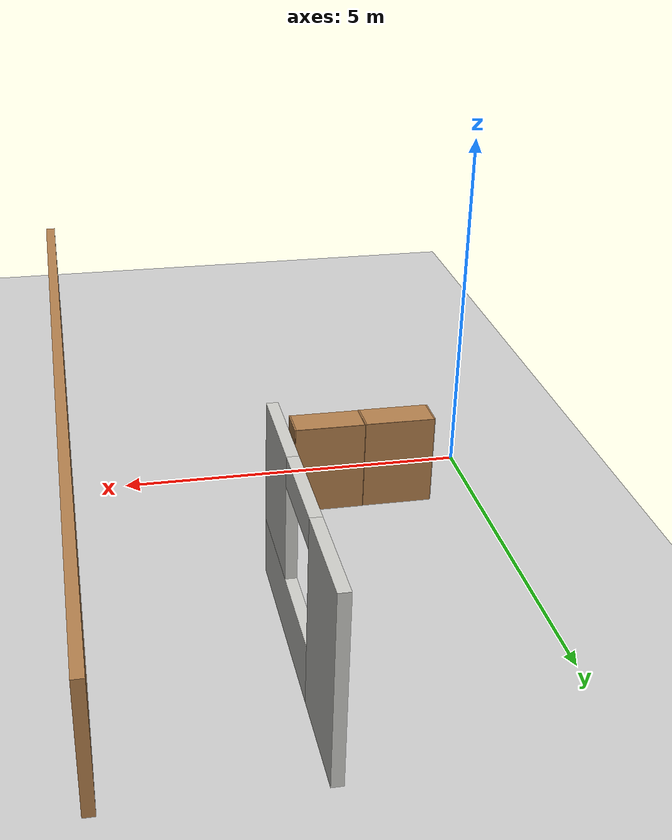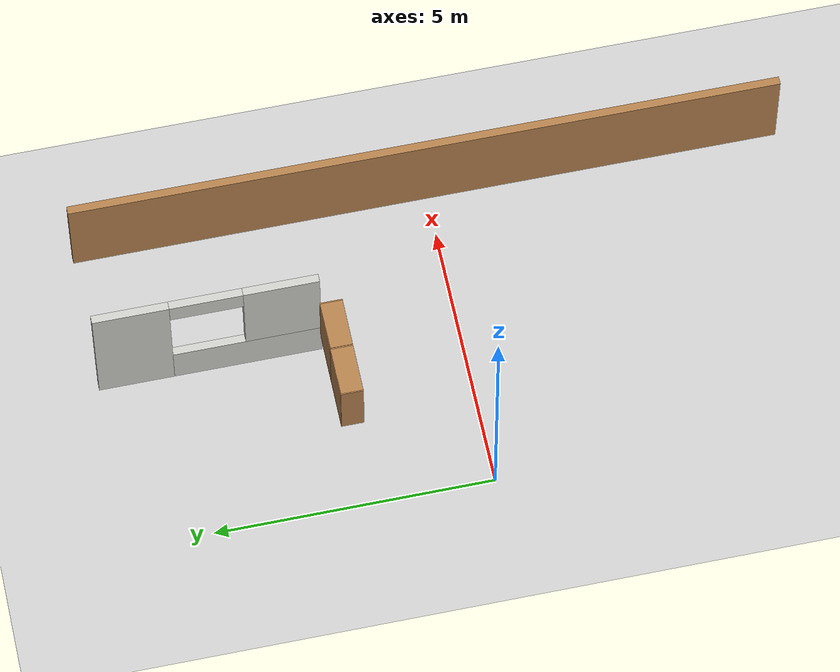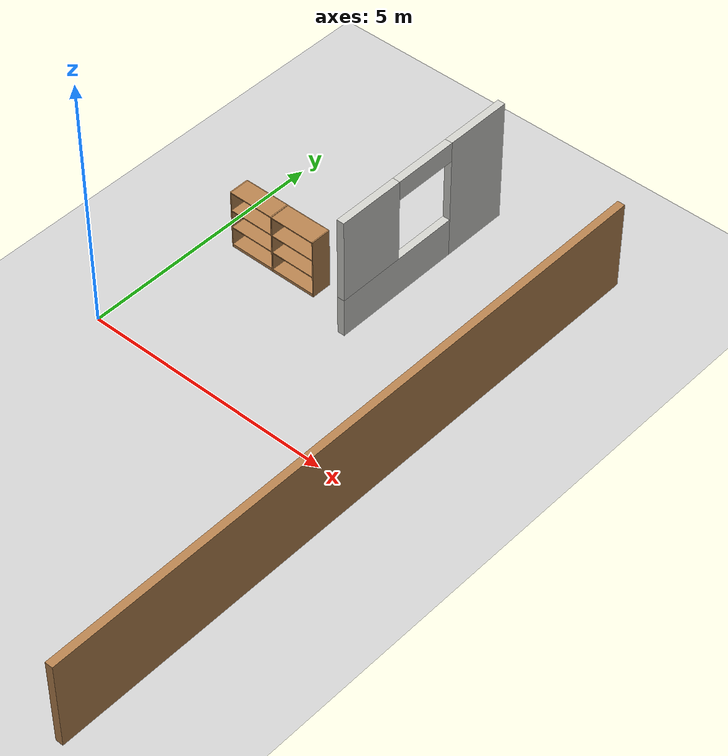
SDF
<sdf version="1.6">
 <world name="default">
  <model name="ground_plane">
   <static>1</static>
   <link name="link">
    <collision name="collision">
     <geometry><plane><normal>0 0 1</normal><size>100 100</size></plane></geometry>
     <surface>
      <contact><collide_bitmask>65535</collide_bitmask></contact>
      <friction><ode><mu>100</mu><mu2>50</mu2></ode></friction>
     </surface>
    </collision>
    <visual name="visual">
     <cast_shadows>0</cast_shadows>
     <geometry><plane><normal>0 0 1</normal><size>100 100</size></plane></geometry>
     <material>
      <script><uri>file://media/materials/scripts/gazebo.material</uri><name>Gazebo/Grey</name></script>
     </material>
    </visual>
   </link>
  </model>
  <model name="house">
   <link name="Wall_17">
    <pose>3.12504 4.42806 0 0 0 -1.5708</pose>
    <visual name="Wall_17_Visual_0">
     <pose>-1.32407 0 1.25 0 -0 0</pose>
     <geometry><box><size>1.35186 0.15 2.5</size></box></geometry>
     <material>
      <script><uri>file://media/materials/scripts/gazebo.material</uri><name>Gazebo/CeilingTiled</name></script>
      <ambient>1 1 1 1</ambient>
      <shader type="pixel"/>
     </material>
     <meta><layer>0</layer></meta>
    </visual>
    <visual name="Wall_17_Visual_3">
     <pose>0.001858 0 2.3 0 -0 0</pose>
     <geometry><box><size>1.3 0.15 0.4</size></box></geometry>
     <material>
      <script><uri>file://media/materials/scripts/gazebo.material</uri><name>Gazebo/CeilingTiled</name></script>
      <ambient>1 1 1 1</ambient>
      <shader type="pixel"/>
     </material>
     <meta><layer>0</layer></meta>
    </visual>
    <visual name="Wall_17_Visual_2">
     <pose>1.32593 0 1.65 0 -0 0</pose>
     <geometry><box><size>1.34814 0.15 1.7</size></box></geometry>
     <material>
      <script><uri>file://media/materials/scripts/gazebo.material</uri><name>Gazebo/CeilingTiled</name></script>
      <ambient>1 1 1 1</ambient>
      <shader type="pixel"/>
     </material>
     <meta><layer>0</layer></meta>
    </visual>
    <visual name="Wall_17_Visual_1">
     <pose>0.675929 0 0.4 0 -0 0</pose>
     <geometry><box><size>2.64814 0.15 0.8</size></box></geometry>
     <material>
      <script><uri>file://media/materials/scripts/gazebo.material</uri><name>Gazebo/CeilingTiled</name></script>
      <ambient>1 1 1 1</ambient>
      <shader type="pixel"/>
     </material>
     <meta><layer>0</layer></meta>
    </visual>
    <collision name="Wall_17_Collision_0">
     <pose>-1.32407 0 1.25 0 -0 0</pose>
     <geometry><box><size>1.35186 0.15 2.5</size></box></geometry>
     <surface>
      <friction>
       <ode><mu>1</mu><mu2>1</mu2><fdir1>0 0 0</fdir1><slip1>0</slip1><slip2>0</slip2></ode>
       <torsional>
        <coefficient>1</coefficient>
        <patch_radius>0</patch_radius>
        <surface_radius>0</surface_radius>
        <use_patch_radius>1</use_patch_radius>
        <ode><slip>0</slip></ode>
       </torsional>
      </friction>
      <bounce><restitution_coefficient>0</restitution_coefficient><threshold>1e+06</threshold></bounce>
      <contact>
       <collide_without_contact>0</collide_without_contact>
       <collide_without_contact_bitmask>1</collide_without_contact_bitmask>
       <collide_bitmask>1</collide_bitmask>
       <ode>
        <soft_cfm>0</soft_cfm>
        <soft_erp>0.2</soft_erp>
        <kp>1e+13</kp>
        <kd>1</kd>
        <max_vel>0.01</max_vel>
        <min_depth>0</min_depth>
       </ode>
       <bullet>
        <split_impulse>1</split_impulse>
        <split_impulse_penetration_threshold>-0.01</split_impulse_penetration_threshold>
        <soft_cfm>0</soft_cfm>
        <soft_erp>0.2</soft_erp>
        <kp>1e+13</kp>
        <kd>1</kd>
       </bullet>
      </contact>
     </surface>
    </collision>
    <collision name="Wall_17_Collision_3">
     <pose>0.001858 0 2.3 0 -0 0</pose>
     <geometry><box><size>1.3 0.15 0.4</size></box></geometry>
     <surface>
      <friction>
       <ode><mu>1</mu><mu2>1</mu2><fdir1>0 0 0</fdir1><slip1>0</slip1><slip2>0</slip2></ode>
       <torsional>
        <coefficient>1</coefficient>
        <patch_radius>0</patch_radius>
        <surface_radius>0</surface_radius>
        <use_patch_radius>1</use_patch_radius>
        <ode><slip>0</slip></ode>
       </torsional>
      </friction>
      <bounce><restitution_coefficient>0</restitution_coefficient><threshold>1e+06</threshold></bounce>
      <contact>
       <collide_without_contact>0</collide_without_contact>
       <collide_without_contact_bitmask>1</collide_without_contact_bitmask>
       <collide_bitmask>1</collide_bitmask>
       <ode>
        <soft_cfm>0</soft_cfm>
        <soft_erp>0.2</soft_erp>
        <kp>1e+13</kp>
        <kd>1</kd>
        <max_vel>0.01</max_vel>
        <min_depth>0</min_depth>
       </ode>
       <bullet>
        <split_impulse>1</split_impulse>
        <split_impulse_penetration_threshold>-0.01</split_impulse_penetration_threshold>
        <soft_cfm>0</soft_cfm>
        <soft_erp>0.2</soft_erp>
        <kp>1e+13</kp>
        <kd>1</kd>
       </bullet>
      </contact>
     </surface>
    </collision>
    <collision name="Wall_17_Collision_2">
     <pose>1.32593 0 1.65 0 -0 0</pose>
     <geometry><box><size>1.34814 0.15 1.7</size></box></geometry>
     <surface>
      <friction>
       <ode><mu>1</mu><mu2>1</mu2><fdir1>0 0 0</fdir1><slip1>0</slip1><slip2>0</slip2></ode>
       <torsional>
        <coefficient>1</coefficient>
        <patch_radius>0</patch_radius>
        <surface_radius>0</surface_radius>
        <use_patch_radius>1</use_patch_radius>
        <ode><slip>0</slip></ode>
       </torsional>
      </friction>
      <bounce><restitution_coefficient>0</restitution_coefficient><threshold>1e+06</threshold></bounce>
      <contact>
       <collide_without_contact>0</collide_without_contact>
       <collide_without_contact_bitmask>1</collide_without_contact_bitmask>
       <collide_bitmask>1</collide_bitmask>
       <ode>
        <soft_cfm>0</soft_cfm>
        <soft_erp>0.2</soft_erp>
        <kp>1e+13</kp>
        <kd>1</kd>
        <max_vel>0.01</max_vel>
        <min_depth>0</min_depth>
       </ode>
       <bullet>
        <split_impulse>1</split_impulse>
        <split_impulse_penetration_threshold>-0.01</split_impulse_penetration_threshold>
        <soft_cfm>0</soft_cfm>
        <soft_erp>0.2</soft_erp>
        <kp>1e+13</kp>
        <kd>1</kd>
       </bullet>
      </contact>
     </surface>
    </collision>
    <collision name="Wall_17_Collision_1">
     <pose>0.675929 0 0.4 0 -0 0</pose>
     <geometry><box><size>2.64814 0.15 0.8</size></box></geometry>
     <surface>
      <friction>
       <ode><mu>1</mu><mu2>1</mu2><fdir1>0 0 0</fdir1><slip1>0</slip1><slip2>0</slip2></ode>
       <torsional>
        <coefficient>1</coefficient>
        <patch_radius>0</patch_radius>
        <surface_radius>0</surface_radius>
        <use_patch_radius>1</use_patch_radius>
        <ode><slip>0</slip></ode>
       </torsional>
      </friction>
      <bounce><restitution_coefficient>0</restitution_coefficient><threshold>1e+06</threshold></bounce>
      <contact>
       <collide_without_contact>0</collide_without_contact>
       <collide_without_contact_bitmask>1</collide_without_contact_bitmask>
       <collide_bitmask>1</collide_bitmask>
       <ode>
        <soft_cfm>0</soft_cfm>
        <soft_erp>0.2</soft_erp>
        <kp>1e+13</kp>
        <kd>1</kd>
        <max_vel>0.01</max_vel>
        <min_depth>0</min_depth>
       </ode>
       <bullet>
        <split_impulse>1</split_impulse>
        <split_impulse_penetration_threshold>-0.01</split_impulse_penetration_threshold>
        <soft_cfm>0</soft_cfm>
        <soft_erp>0.2</soft_erp>
        <kp>1e+13</kp>
        <kd>1</kd>
       </bullet>
      </contact>
     </surface>
    </collision>
   </link>
   <link name="Wall_26">
    <pose>5.72383 -0.002942 0 0 -0 1.57083</pose>
    <inertial>
     <mass>1</mass>
     <inertia><ixx>1</ixx><ixy>0</ixy><ixz>0</ixz><iyy>1</iyy><iyz>0</iyz><izz>1</izz></inertia>
    </inertial>
    <visual name="Wall_26_Visual">
     <pose>0 0 0.9 0 -0 0</pose>
     <geometry><box><size>12.85 0.15 1.8</size></box></geometry>
     <material>
      <script><uri>file://media/materials/scripts/gazebo.material</uri><name>Gazebo/Wood</name></script>
      <ambient>1 1 1 1</ambient>
      <shader type="pixel"><normal_map>__default__</normal_map></shader>
      <diffuse>0.7 0.7 0.7 1</diffuse>
      <specular>0.01 0.01 0.01 1</specular>
      <emissive>0 0 0 1</emissive>
     </material>
     <meta><layer>0</layer></meta>
    </visual>
    <collision name="Wall_26_Collision">
     <pose>0 0 0.9 0 -0 0</pose>
     <geometry><box><size>12.85 0.15 1.8</size></box></geometry>
     <surface>
      <friction>
       <ode><mu>1</mu><mu2>1</mu2><fdir1>0 0 0</fdir1><slip1>0</slip1><slip2>0</slip2></ode>
       <torsional>
        <coefficient>1</coefficient>
        <patch_radius>0</patch_radius>
        <surface_radius>0</surface_radius>
        <use_patch_radius>1</use_patch_radius>
        <ode><slip>0</slip></ode>
       </torsional>
      </friction>
      <bounce><restitution_coefficient>0</restitution_coefficient><threshold>1e+06</threshold></bounce>
      <contact>
       <collide_without_contact>0</collide_without_contact>
       <collide_without_contact_bitmask>1</collide_without_contact_bitmask>
       <collide_bitmask>1</collide_bitmask>
       <ode>
        <soft_cfm>0</soft_cfm>
        <soft_erp>0.2</soft_erp>
        <kp>1e+13</kp>
        <kd>1</kd>
        <max_vel>0.01</max_vel>
        <min_depth>0</min_depth>
       </ode>
       <bullet>
        <split_impulse>1</split_impulse>
        <split_impulse_penetration_threshold>-0.01</split_impulse_penetration_threshold>
        <soft_cfm>0</soft_cfm>
        <soft_erp>0.2</soft_erp>
        <kp>1e+13</kp>
        <kd>1</kd>
       </bullet>
      </contact>
     </surface>
    </collision>
   </link>
   <static>1</static>
   <pose>0.117199 0.016408 0 0 -0 0</pose>
  </model>
  <model name="bookshelf">
   <static>1</static>
   <link name="link">
    <inertial><mass>1</mass></inertial>
    <collision name="back">
     <pose>0 0.005 0.6 0 -0 0</pose>
     <geometry><box><size>0.9 0.01 1.2</size></box></geometry>
    </collision>
    <visual name="visual1">
     <pose>0 0.005 0.6 0 -0 0</pose>
     <geometry><box><size>0.9 0.01 1.2</size></box></geometry>
     <material>
      <script><uri>file://media/materials/scripts/gazebo.material</uri><name>Gazebo/Wood</name></script>
     </material>
    </visual>
    <collision name="left_side">
     <pose>0.45 -0.195 0.6 0 -0 0</pose>
     <geometry><box><size>0.02 0.4 1.2</size></box></geometry>
    </collision>
    <visual name="visual2">
     <pose>0.45 -0.195 0.6 0 -0 0</pose>
     <geometry><box><size>0.02 0.4 1.2</size></box></geometry>
     <material>
      <script><uri>file://media/materials/scripts/gazebo.material</uri><name>Gazebo/Wood</name></script>
     </material>
    </visual>
    <collision name="right_side">
     <pose>-0.45 -0.195 0.6 0 -0 0</pose>
     <geometry><box><size>0.02 0.4 1.2</size></box></geometry>
    </collision>
    <visual name="visual3">
     <pose>-0.45 -0.195 0.6 0 -0 0</pose>
     <geometry><box><size>0.02 0.4 1.2</size></box></geometry>
     <material>
      <script><uri>file://media/materials/scripts/gazebo.material</uri><name>Gazebo/Wood</name></script>
     </material>
    </visual>
    <collision name="bottom">
     <pose>0 -0.195 0.03 0 -0 0</pose>
     <geometry><box><size>0.88 0.4 0.06</size></box></geometry>
    </collision>
    <visual name="visual4">
     <pose>0 -0.195 0.03 0 -0 0</pose>
     <geometry><box><size>0.88 0.4 0.06</size></box></geometry>
     <material>
      <script><uri>file://media/materials/scripts/gazebo.material</uri><name>Gazebo/Wood</name></script>
     </material>
    </visual>
    <collision name="top">
     <pose>0 -0.195 1.19 0 -0 0</pose>
     <geometry><box><size>0.88 0.4 0.02</size></box></geometry>
    </collision>
    <visual name="visual5">
     <pose>0 -0.195 1.19 0 -0 0</pose>
     <geometry><box><size>0.88 0.4 0.02</size></box></geometry>
     <material>
      <script><uri>file://media/materials/scripts/gazebo.material</uri><name>Gazebo/Wood</name></script>
     </material>
    </visual>
    <collision name="low_shelf">
     <pose>0 -0.195 0.43 0 -0 0</pose>
     <geometry><box><size>0.88 0.4 0.02</size></box></geometry>
    </collision>
    <visual name="visual6">
     <pose>0 -0.195 0.43 0 -0 0</pose>
     <geometry><box><size>0.88 0.4 0.02</size></box></geometry>
     <material>
      <script><uri>file://media/materials/scripts/gazebo.material</uri><name>Gazebo/Wood</name></script>
     </material>
    </visual>
    <collision name="high_shelf">
     <pose>0 -0.195 0.8 0 -0 0</pose>
     <geometry><box><size>0.88 0.4 0.02</size></box></geometry>
    </collision>
    <visual name="visual7">
     <pose>0 -0.195 0.8 0 -0 0</pose>
     <geometry><box><size>0.88 0.4 0.02</size></box></geometry>
     <material>
      <script><uri>file://media/materials/scripts/gazebo.material</uri><name>Gazebo/Wood</name></script>
     </material>
    </visual>
   </link>
   <pose>2.49976 2.48874 0.905775 0 -0 0</pose>
  </model>
  <model name="bookshelf_0">
   <static>1</static>
   <link name="link">
    <inertial><mass>1</mass></inertial>
    <collision name="back">
     <pose>0 0.005 0.6 0 -0 0</pose>
     <geometry><box><size>0.9 0.01 1.2</size></box></geometry>
    </collision>
    <visual name="visual1">
     <pose>0 0.005 0.6 0 -0 0</pose>
     <geometry><box><size>0.9 0.01 1.2</size></box></geometry>
     <material>
      <script><uri>file://media/materials/scripts/gazebo.material</uri><name>Gazebo/Wood</name></script>
     </material>
    </visual>
    <collision name="left_side">
     <pose>0.45 -0.195 0.6 0 -0 0</pose>
     <geometry><box><size>0.02 0.4 1.2</size></box></geometry>
    </collision>
    <visual name="visual2">
     <pose>0.45 -0.195 0.6 0 -0 0</pose>
     <geometry><box><size>0.02 0.4 1.2</size></box></geometry>
     <material>
      <script><uri>file://media/materials/scripts/gazebo.material</uri><name>Gazebo/Wood</name></script>
     </material>
    </visual>
    <collision name="right_side">
     <pose>-0.45 -0.195 0.6 0 -0 0</pose>
     <geometry><box><size>0.02 0.4 1.2</size></box></geometry>
    </collision>
    <visual name="visual3">
     <pose>-0.45 -0.195 0.6 0 -0 0</pose>
     <geometry><box><size>0.02 0.4 1.2</size></box></geometry>
     <material>
      <script><uri>file://media/materials/scripts/gazebo.material</uri><name>Gazebo/Wood</name></script>
     </material>
    </visual>
    <collision name="bottom">
     <pose>0 -0.195 0.03 0 -0 0</pose>
     <geometry><box><size>0.88 0.4 0.06</size></box></geometry>
    </collision>
    <visual name="visual4">
     <pose>0 -0.195 0.03 0 -0 0</pose>
     <geometry><box><size>0.88 0.4 0.06</size></box></geometry>
     <material>
      <script><uri>file://media/materials/scripts/gazebo.material</uri><name>Gazebo/Wood</name></script>
     </material>
    </visual>
    <collision name="top">
     <pose>0 -0.195 1.19 0 -0 0</pose>
     <geometry><box><size>0.88 0.4 0.02</size></box></geometry>
    </collision>
    <visual name="visual5">
     <pose>0 -0.195 1.19 0 -0 0</pose>
     <geometry><box><size>0.88 0.4 0.02</size></box></geometry>
     <material>
      <script><uri>file://media/materials/scripts/gazebo.material</uri><name>Gazebo/Wood</name></script>
     </material>
    </visual>
    <collision name="low_shelf">
     <pose>0 -0.195 0.43 0 -0 0</pose>
     <geometry><box><size>0.88 0.4 0.02</size></box></geometry>
    </collision>
    <visual name="visual6">
     <pose>0 -0.195 0.43 0 -0 0</pose>
     <geometry><box><size>0.88 0.4 0.02</size></box></geometry>
     <material>
      <script><uri>file://media/materials/scripts/gazebo.material</uri><name>Gazebo/Wood</name></script>
     </material>
    </visual>
    <collision name="high_shelf">
     <pose>0 -0.195 0.8 0 -0 0</pose>
     <geometry><box><size>0.88 0.4 0.02</size></box></geometry>
    </collision>
    <visual name="visual7">
     <pose>0 -0.195 0.8 0 -0 0</pose>
     <geometry><box><size>0.88 0.4 0.02</size></box></geometry>
     <material>
      <script><uri>file://media/materials/scripts/gazebo.material</uri><name>Gazebo/Wood</name></script>
     </material>
    </visual>
   </link>
   <pose>1.59068 2.48844 0.909657 0 -0 0</pose>
  </model>
 </world>
</sdf>
